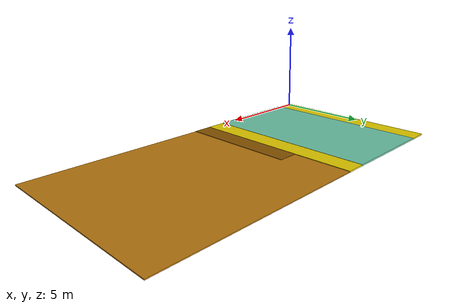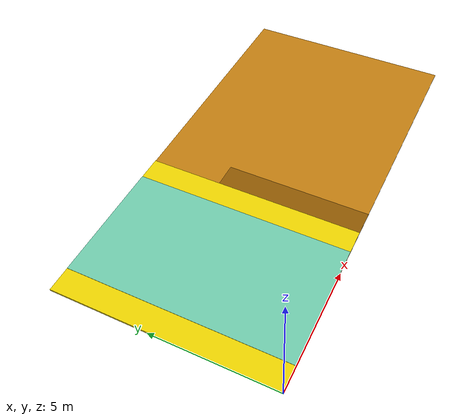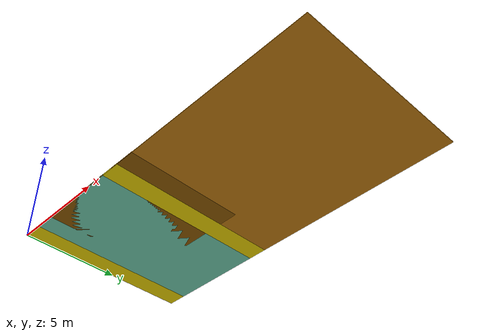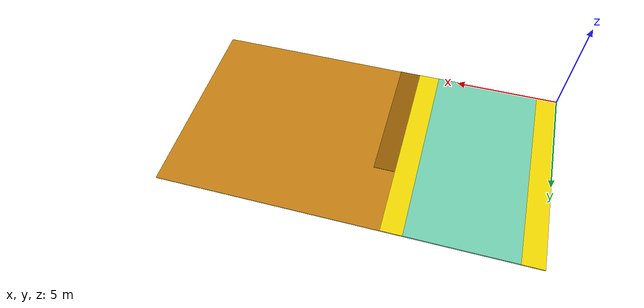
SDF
<?xml version='1.0'?>
<sdf version='1.6'>
  <model name='base_m4'>
    <pose frame=''>8.75 4.5 0 0 -0 0</pose>
    <link name='Wall_11'>
      <collision name='Wall_11_Collision'>
        <geometry>
          <box>
            <size>6 6 0.06</size>
          </box>
        </geometry>
        <pose frame=''>0 0 0.03 0 -0 0</pose>
      </collision>
      <visual name='Wall_11_Visual'>
        <pose frame=''>0 0 0.03 0 -0 0</pose>
        <geometry>
          <box>
            <size>6 6 0.06</size>
          </box>
        </geometry>
        <material>
          <script>
            <uri>file://media/materials/scripts/gazebo.material</uri>
            <name>Gazebo/Grey</name>
          </script>
          <ambient>0.560784 0.34902 0.00784314 1</ambient>
        </material>
        <meta>
          <layer>0</layer>
        </meta>
      </visual>
      <pose frame=''>-3.75 -1.5 0 0 -0 0</pose>
    </link>
    <link name='Wall_3'>
      <collision name='Wall_3_Collision'>
        <geometry>
          <box>
            <size>9 1 0.07</size>
          </box>
        </geometry>
        <pose frame=''>0 0 0.035 0 -0 0</pose>
      </collision>
      <visual name='Wall_3_Visual'>
        <pose frame=''>0 0 0.035 0 -0 0</pose>
        <geometry>
          <box>
            <size>9 1 0.07</size>
          </box>
        </geometry>
        <material>
          <script>
            <uri>file://media/materials/scripts/gazebo.material</uri>
            <name>Gazebo/Grey</name>
          </script>
          <ambient>0.929412 0.831373 0 1</ambient>
        </material>
        <meta>
          <layer>0</layer>
        </meta>
      </visual>
      <pose frame=''>-8.25 0 0 0 -0 1.5708</pose>
    </link>
    <link name='Wall_5'>
      <collision name='Wall_5_Collision'>
        <geometry>
          <box>
            <size>9 5 0.08</size>
          </box>
        </geometry>
        <pose frame=''>0 0 0.04 0 -0 0</pose>
      </collision>
      <visual name='Wall_5_Visual'>
        <pose frame=''>0 0 0.04 0 -0 0</pose>
        <geometry>
          <box>
            <size>9 5 0.08</size>
          </box>
        </geometry>
        <material>
          <script>
            <uri>file://media/materials/scripts/gazebo.material</uri>
            <name>Gazebo/Grey</name>
          </script>
          <ambient>0.435294 0.796078 0.67451 1</ambient>
        </material>
        <meta>
          <layer>0</layer>
        </meta>
      </visual>
      <pose frame=''>-5.25 0 0 0 -0 1.5708</pose>
    </link>
    <link name='Wall_7'>
      <collision name='Wall_7_Collision'>
        <geometry>
          <box>
            <size>9 1 0.07</size>
          </box>
        </geometry>
        <pose frame=''>0 0 0.035 0 -0 0</pose>
      </collision>
      <visual name='Wall_7_Visual'>
        <pose frame=''>0 0 0.035 0 -0 0</pose>
        <geometry>
          <box>
            <size>9 1 0.07</size>
          </box>
        </geometry>
        <material>
          <script>
            <uri>file://media/materials/scripts/gazebo.material</uri>
            <name>Gazebo/Grey</name>
          </script>
          <ambient>0.929412 0.831373 0 1</ambient>
        </material>
        <meta>
          <layer>0</layer>
        </meta>
      </visual>
      <pose frame=''>-2.25 0 0 0 -0 1.5708</pose>
    </link>
    <link name='Wall_9'>
      <collision name='Wall_9_Collision'>
        <geometry>
          <box>
            <size>10.5 9 0.04</size>
          </box>
        </geometry>
        <pose frame=''>0 0 0.02 0 -0 0</pose>
      </collision>
      <visual name='Wall_9_Visual'>
        <pose frame=''>0 0 0.02 0 -0 0</pose>
        <geometry>
          <box>
            <size>10.5 9 0.04</size>
          </box>
        </geometry>
        <material>
          <script>
            <uri>file://media/materials/scripts/gazebo.material</uri>
            <name>Gazebo/Grey</name>
          </script>
          <ambient>0.756863 0.490196 0.0666667 1</ambient>
        </material>
        <meta>
          <layer>0</layer>
        </meta>
      </visual>
      <pose frame=''>3.5 0 0 0 -0 0</pose>
    </link>
    <static>1</static>
  </model>
</sdf>
